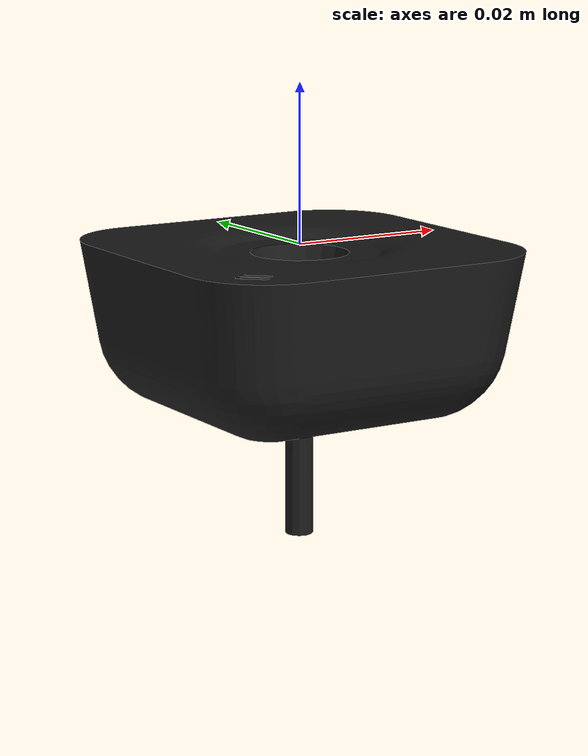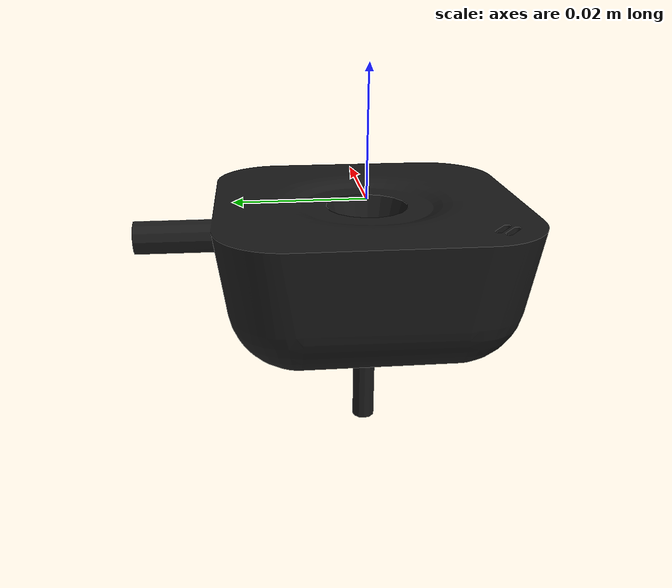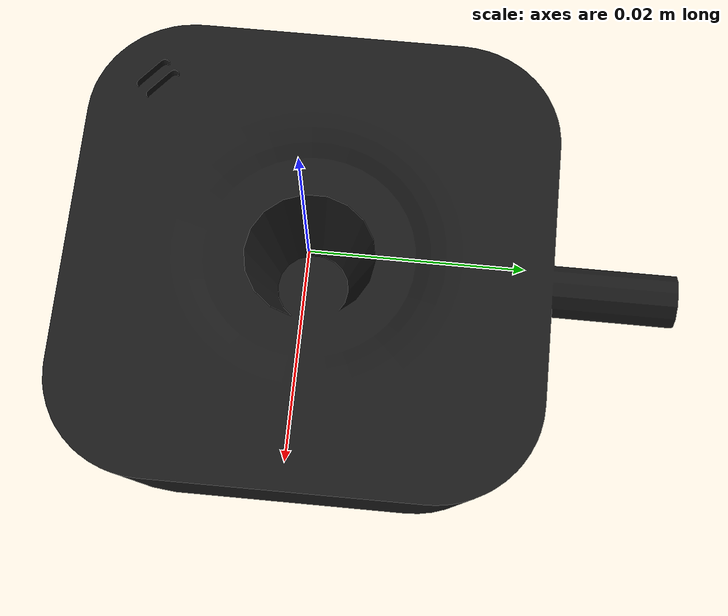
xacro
<robot name="Rear_Camera_link"><link name="Rear_Camera_link">
    <inertial>
      <origin rpy="0 0 0" xyz="3.63553471786722E-06 0.000213443852905448 -0.00979905092954501" />
      <mass value="0.0346828331927957" />
      <inertia ixx="6.28790547336403E-06" ixy="-2.06834495042828E-09" ixz="1.17994816083997E-09" iyy="6.08020816375982E-06" iyz="3.61787794070637E-08" izz="9.95214453956502E-06" />
    </inertial>
    <visual>
      <origin rpy="0 0 0" xyz="0 0 0" />
      <geometry>
        <mesh filename="package://robotican_description/komodo/meshes/Rear_Camera_link.STL" />
      </geometry>
      <material name="">
        <color rgba="0.1 0.1 0.1 1" />
      </material>
    </visual>
    <collision>
      <origin rpy="0 0 0" xyz="0 0 0" />
      <geometry>
        <mesh filename="package://robotican_description/komodo/meshes/Rear_Camera_link.STL" />
      </geometry>
    </collision>
  </link>
  </robot>
